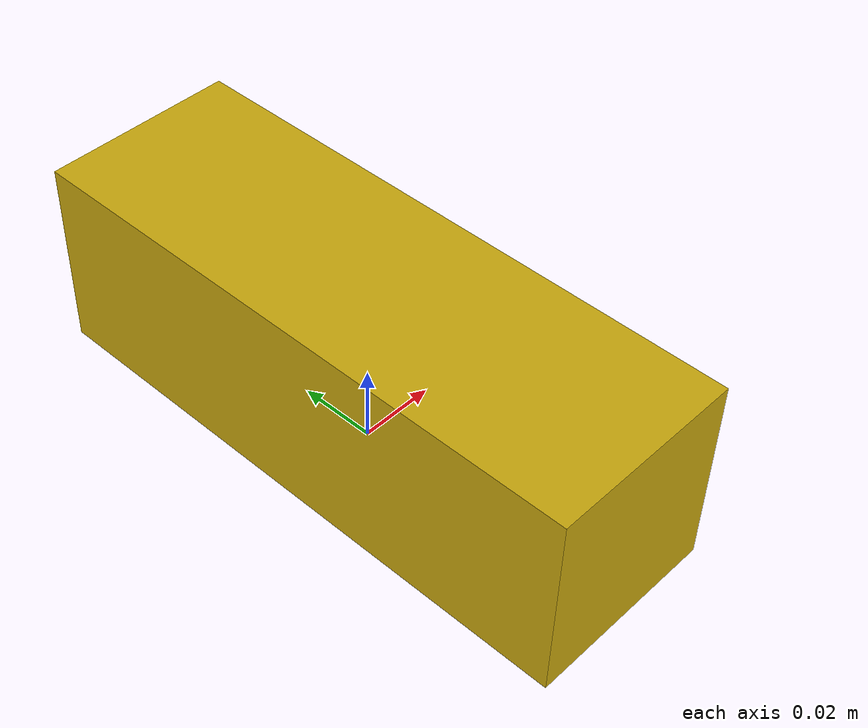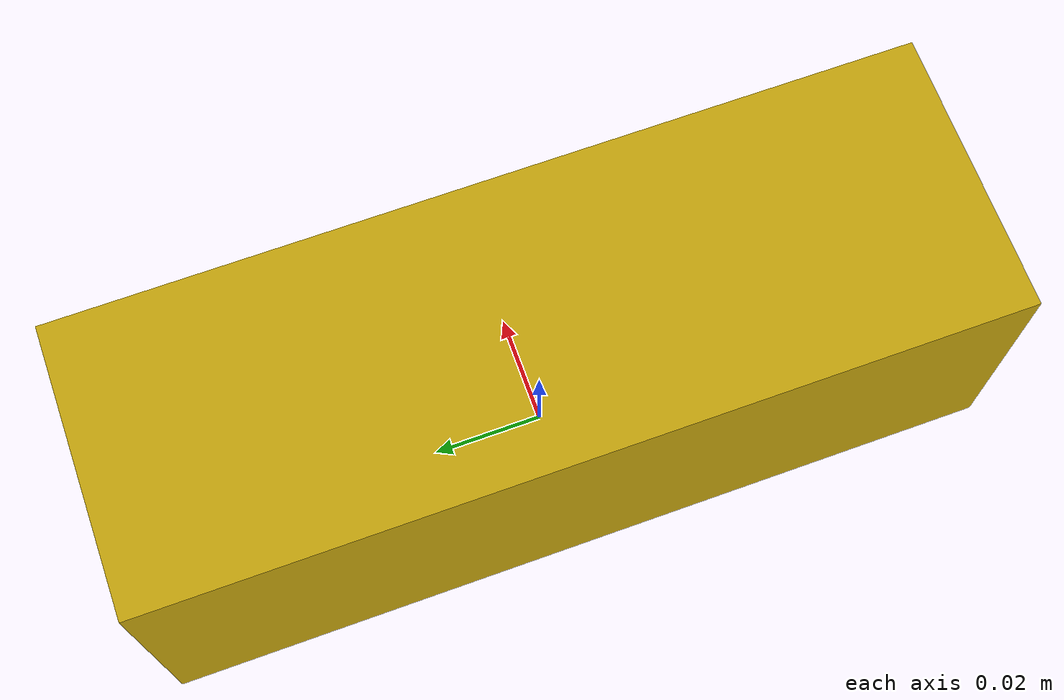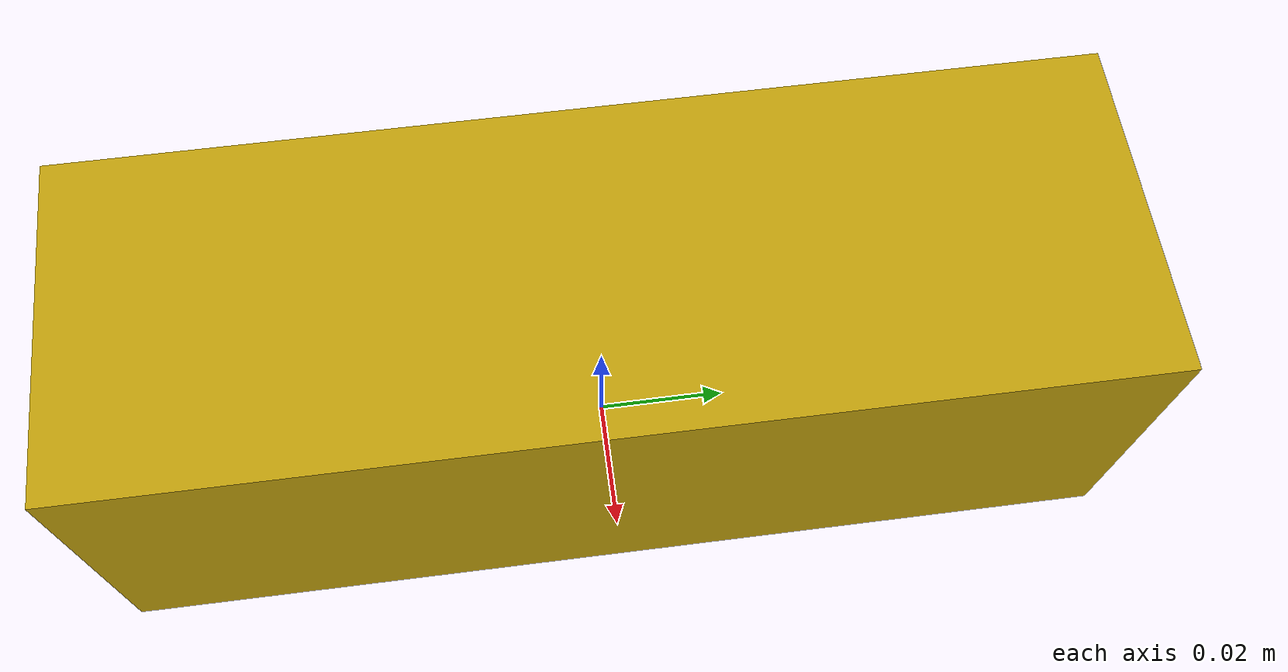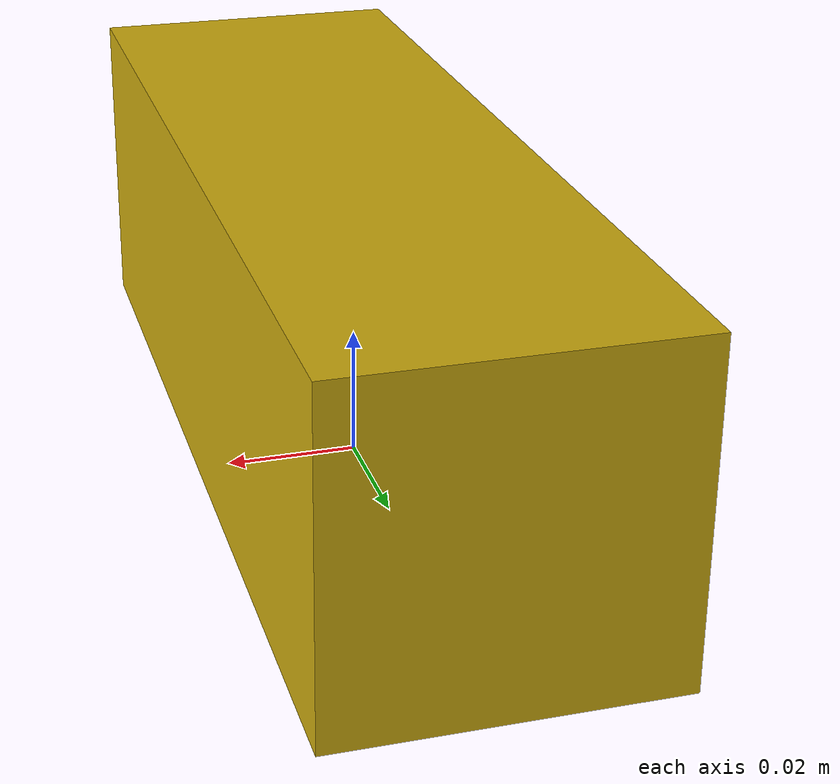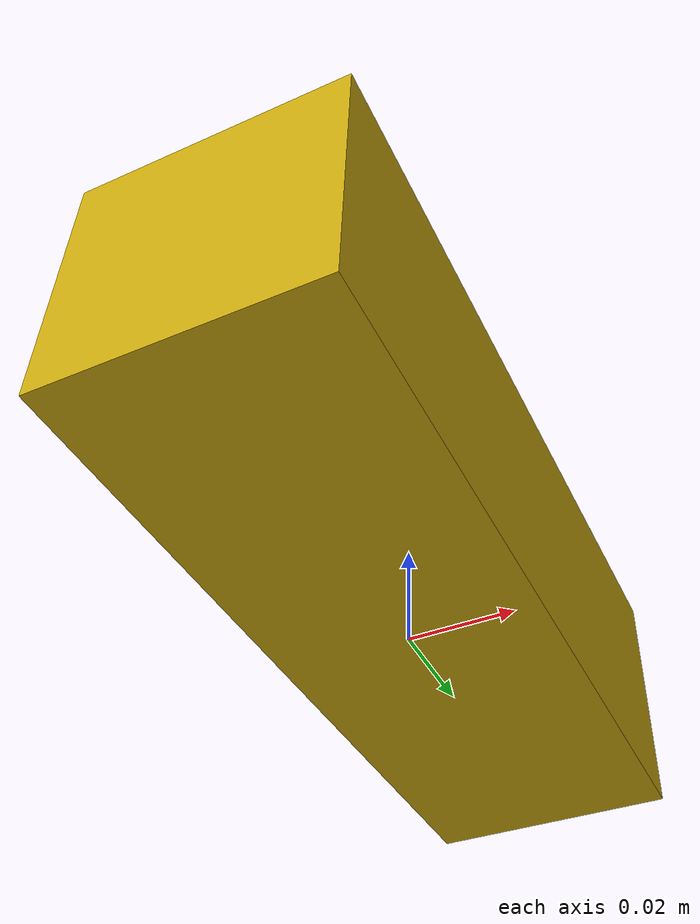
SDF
<sdf version="1.6">
  <model name="truck_part_gold_bar">
    <static>false</static>
    <link name="new_link">
      <collision name="Cube_collision">
        <pose>0.00000 0.00000 0.02500 0.00000 0.00000 0.00000</pose>
        <geometry>
          <box>
            <size>0.05000 0.15000 0.05000</size>
          </box>
        </geometry>
        <surface>
          <contact/>
        </surface>
      </collision>

      <inertial>
        <pose>0.00000 0.00000 0.02500 0.00000 0.00000 0.00000</pose>
        <mass>0.20000</mass>
        <inertia>
          <ixx>0.00042</ixx>
          <ixy>0.00000</ixy>
          <ixz>0.00000</ixz>
          <iyy>0.00008</iyy>
          <iyz>0.00000</iyz>
          <izz>0.00042</izz>
        </inertia>
      </inertial>

      <visual name="Cube">
        <pose>0.00000 0.00000 0.02500 0.00000 0.00000 0.00000</pose>
        <geometry>
          <box>
            <size>0.05000 0.15000 0.05000</size>
          </box>
        </geometry>
        <material>
          <diffuse>0.80000 0.66667 0.05490 1.00000</diffuse>
          <specular>1.00000 1.00000 1.00000 0.51373</specular>
        </material>
      </visual>
    </link>
  </model>
</sdf>
